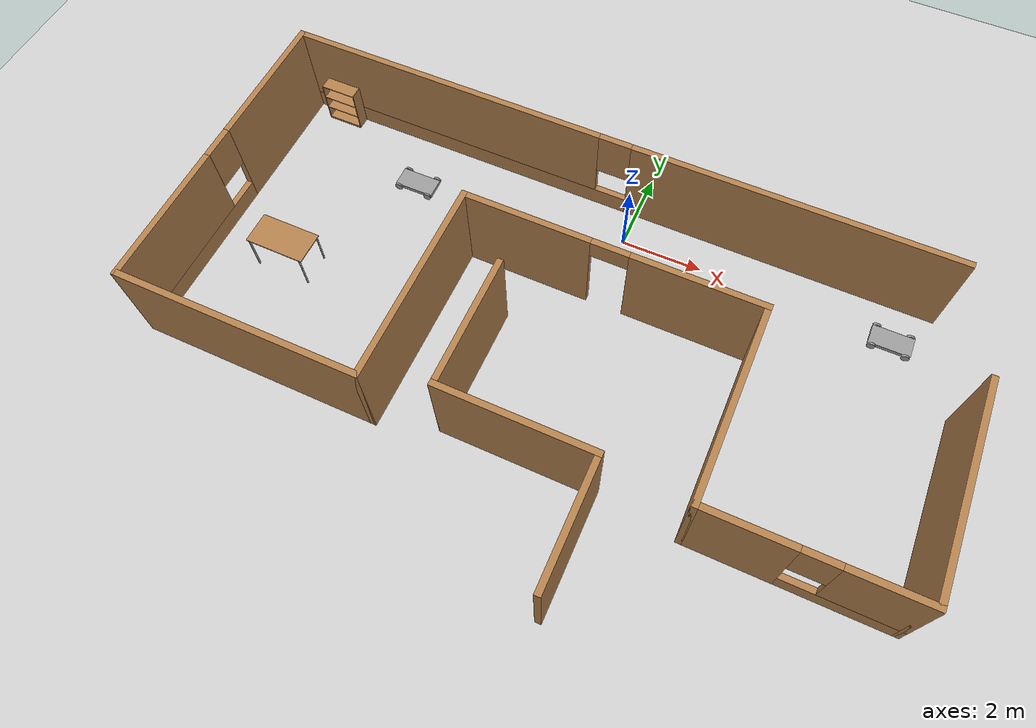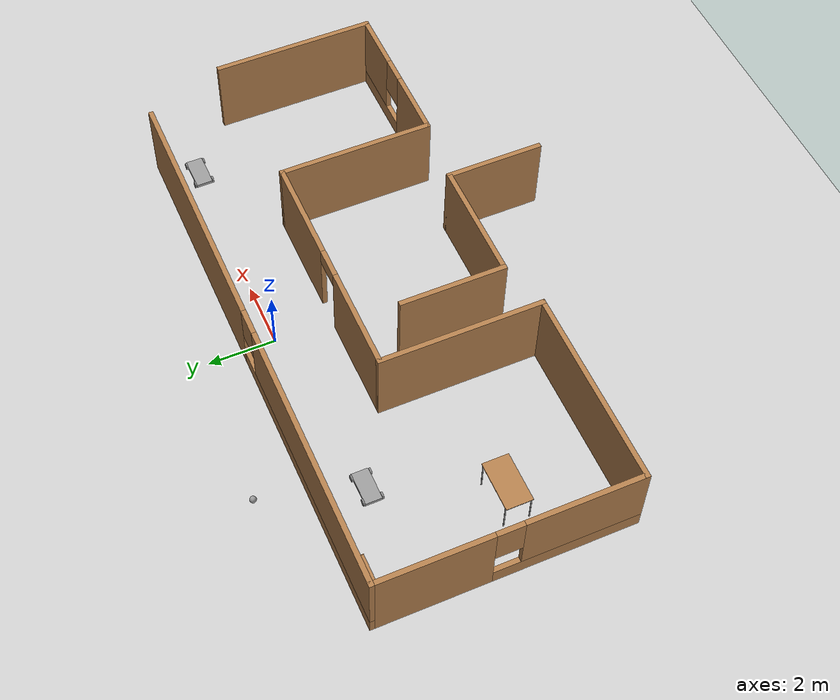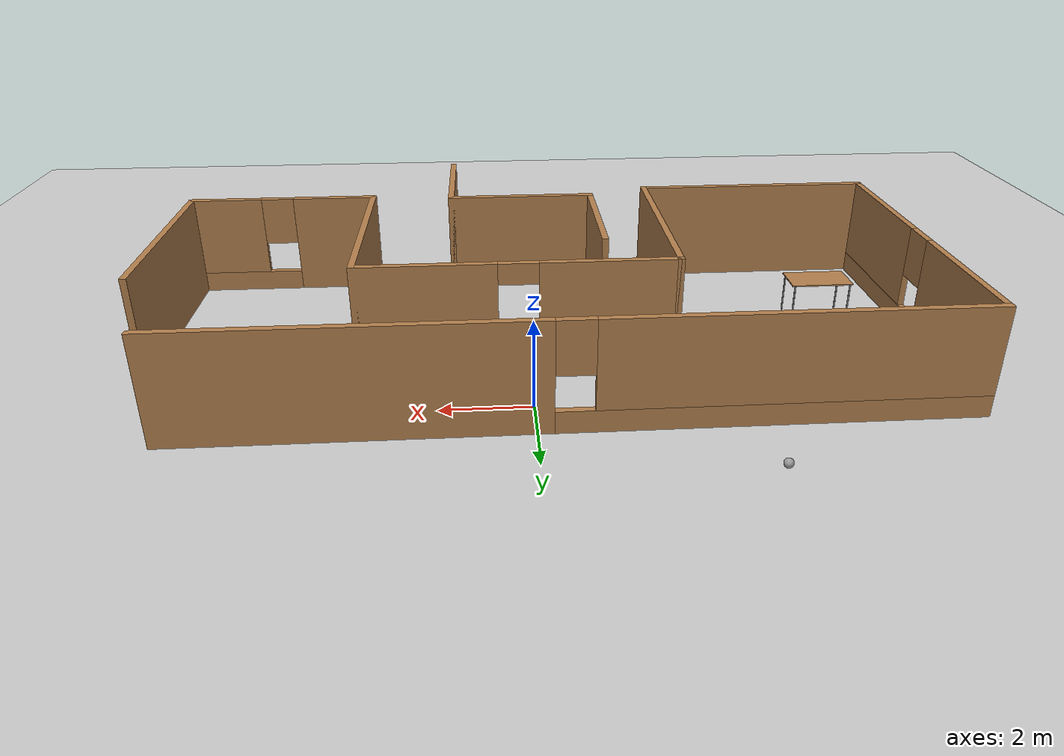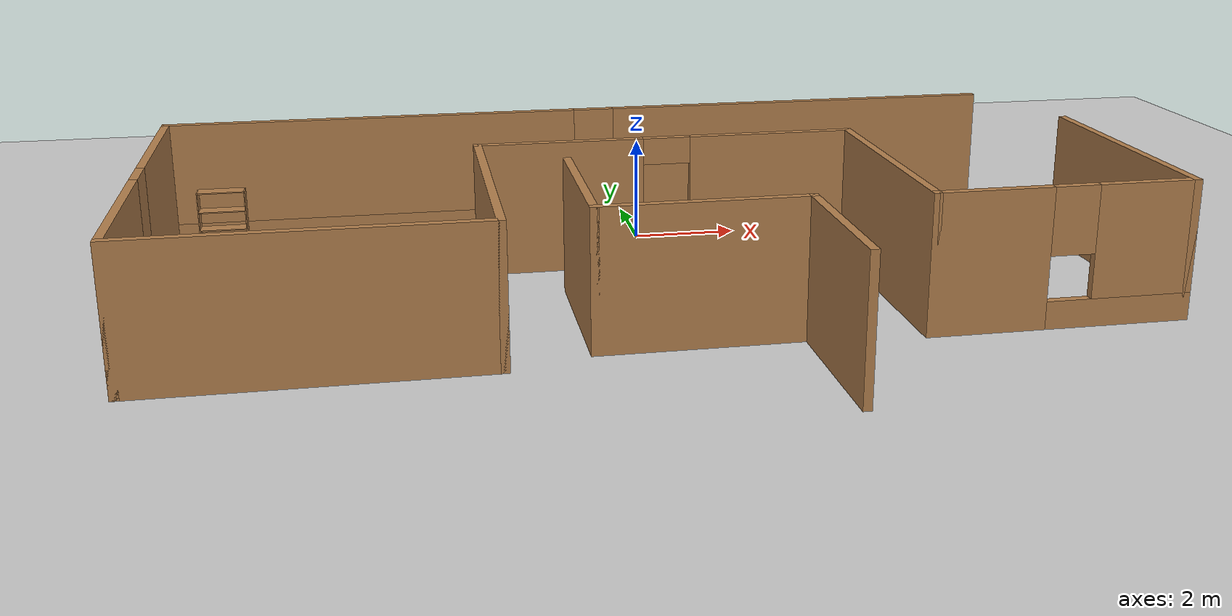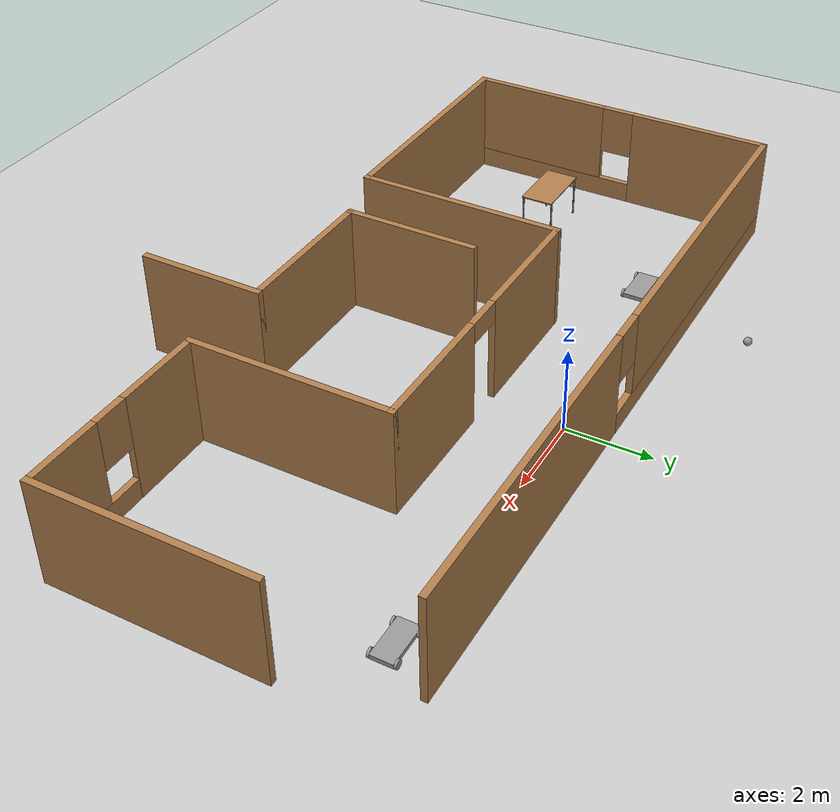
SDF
<sdf version="1.6">
 <world name="default">
  <plugin name="hello" filename="libhello.so"/>
  <light name="sun" type="directional">
   <pose>0 0 10 0 -0 0</pose>
   <diffuse>0.8 0.8 0.8 1</diffuse>
   <specular>0.2 0.2 0.2 1</specular>
   <attenuation>
    <range>1000</range>
    <constant>0.9</constant>
    <linear>0.01</linear>
    <quadratic>0.001</quadratic>
   </attenuation>
   <direction>-0.5 0.1 -0.9</direction>
  </light>
  <model name="ground_plane">
   <static>1</static>
   <link name="link">
    <collision name="collision">
     <geometry><plane><normal>0 0 1</normal><size>100 100</size></plane></geometry>
     <surface><friction><ode><mu>100</mu><mu2>50</mu2></ode></friction></surface>
    </collision>
    <visual name="visual">
     <cast_shadows>0</cast_shadows>
     <geometry><plane><normal>0 0 1</normal><size>100 100</size></plane></geometry>
     <material>
      <script><uri>file://media/materials/scripts/gazebo.material</uri><name>Gazebo/Grey</name></script>
     </material>
    </visual>
   </link>
  </model>
  <gravity>0 0 -9.8</gravity>
  <magnetic_field>6e-06 2.3e-05 -4.2e-05</magnetic_field>
  <atmosphere type="adiabatic"/>
  <physics name="default_physics" default="0" type="ode">
   <max_step_size>0.001</max_step_size>
   <real_time_factor>1</real_time_factor>
   <real_time_update_rate>1000</real_time_update_rate>
  </physics>
  <scene><ambient>0.4 0.4 0.4 1</ambient><background>0.7 0.7 0.7 1</background><shadows>1</shadows></scene>
  <spherical_coordinates>
   <surface_model>EARTH_WGS84</surface_model>
   <latitude_deg>0</latitude_deg>
   <longitude_deg>0</longitude_deg>
   <elevation>0</elevation>
   <heading_deg>0</heading_deg>
  </spherical_coordinates>
  <model name="carModel">
   <link name="link_0">
    <pose>0 0 0.00865 0 -0 0</pose>
    <inertial>
     <mass>1</mass>
     <inertia>
      <ixx>0.166667</ixx>
      <ixy>0</ixy>
      <ixz>0</ixz>
      <iyy>0.166667</iyy>
      <iyz>0</iyz>
      <izz>0.166667</izz>
     </inertia>
    </inertial>
    <visual name="visual">
     <geometry><box><size>1 0.5 0.1</size></box></geometry>
     <material>
      <lighting>1</lighting>
      <script><uri>file://media/materials/scripts/gazebo.material</uri><name>Gazebo/Grey</name></script>
      <shader type="pixel"><normal_map>__default__</normal_map></shader>
      <ambient>0.3 0.3 0.3 1</ambient>
      <diffuse>0.7 0.7 0.7 1</diffuse>
      <specular>0.01 0.01 0.01 1</specular>
      <emissive>0 0 0 1</emissive>
     </material>
    </visual>
    <collision name="collision">
     <geometry><box><size>1 0.5 0.1</size></box></geometry>
     <surface>
      <friction>
       <ode><mu>1</mu><mu2>1</mu2><fdir1>0 0 0</fdir1><slip1>0</slip1><slip2>0</slip2></ode>
       <torsional>
        <coefficient>1</coefficient>
        <patch_radius>0</patch_radius>
        <surface_radius>0</surface_radius>
        <use_patch_radius>1</use_patch_radius>
        <ode><slip>0</slip></ode>
       </torsional>
      </friction>
      <bounce><restitution_coefficient>0</restitution_coefficient><threshold>1e+06</threshold></bounce>
      <contact>
       <collide_without_contact>0</collide_without_contact>
       <collide_without_contact_bitmask>1</collide_without_contact_bitmask>
       <collide_bitmask>1</collide_bitmask>
       <ode>
        <soft_cfm>0</soft_cfm>
        <soft_erp>0.2</soft_erp>
        <kp>1e+13</kp>
        <kd>1</kd>
        <max_vel>0.01</max_vel>
        <min_depth>0</min_depth>
       </ode>
       <bullet>
        <split_impulse>1</split_impulse>
        <split_impulse_penetration_threshold>-0.01</split_impulse_penetration_threshold>
        <soft_cfm>0</soft_cfm>
        <soft_erp>0.2</soft_erp>
        <kp>1e+13</kp>
        <kd>1</kd>
       </bullet>
      </contact>
     </surface>
    </collision>
   </link>
   <link name="link_1_clone_0">
    <pose>-0.4 -0.27501 -0.002162 1.5707 -0 0</pose>
    <inertial>
     <mass>1</mass>
     <inertia><ixx>0.145833</ixx><ixy>0</ixy><ixz>0</ixz><iyy>0.145833</iyy><iyz>0</iyz><izz>0.125</izz></inertia>
    </inertial>
    <visual name="visual">
     <geometry><cylinder><radius>0.1</radius><length>0.05</length></cylinder></geometry>
     <material>
      <lighting>1</lighting>
      <script><uri>file://media/materials/scripts/gazebo.material</uri><name>Gazebo/Grey</name></script>
      <shader type="pixel"><normal_map>__default__</normal_map></shader>
      <ambient>0.3 0.3 0.3 1</ambient>
      <diffuse>0.7 0.7 0.7 1</diffuse>
      <specular>0.01 0.01 0.01 1</specular>
      <emissive>0 0 0 1</emissive>
     </material>
    </visual>
    <collision name="collision">
     <geometry><cylinder><radius>0.1</radius><length>0.05</length></cylinder></geometry>
     <surface>
      <friction>
       <ode><mu>1</mu><mu2>1</mu2><fdir1>0 0 0</fdir1><slip1>0</slip1><slip2>0</slip2></ode>
       <torsional>
        <coefficient>1</coefficient>
        <patch_radius>0</patch_radius>
        <surface_radius>0</surface_radius>
        <use_patch_radius>1</use_patch_radius>
        <ode><slip>0</slip></ode>
       </torsional>
      </friction>
      <bounce><restitution_coefficient>0</restitution_coefficient><threshold>1e+06</threshold></bounce>
      <contact>
       <collide_without_contact>0</collide_without_contact>
       <collide_without_contact_bitmask>1</collide_without_contact_bitmask>
       <collide_bitmask>1</collide_bitmask>
       <ode>
        <soft_cfm>0</soft_cfm>
        <soft_erp>0.2</soft_erp>
        <kp>1e+13</kp>
        <kd>1</kd>
        <max_vel>0.01</max_vel>
        <min_depth>0</min_depth>
       </ode>
       <bullet>
        <split_impulse>1</split_impulse>
        <split_impulse_penetration_threshold>-0.01</split_impulse_penetration_threshold>
        <soft_cfm>0</soft_cfm>
        <soft_erp>0.2</soft_erp>
        <kp>1e+13</kp>
        <kd>1</kd>
       </bullet>
      </contact>
     </surface>
    </collision>
   </link>
   <link name="link_1_clone_1">
    <pose>-0.4 0.27501 -0.002162 1.5707 -0 0</pose>
    <inertial>
     <mass>1</mass>
     <inertia><ixx>0.145833</ixx><ixy>0</ixy><ixz>0</ixz><iyy>0.145833</iyy><iyz>0</iyz><izz>0.125</izz></inertia>
    </inertial>
    <visual name="visual">
     <geometry><cylinder><radius>0.1</radius><length>0.05</length></cylinder></geometry>
     <material>
      <lighting>1</lighting>
      <script><uri>file://media/materials/scripts/gazebo.material</uri><name>Gazebo/Grey</name></script>
      <shader type="pixel"><normal_map>__default__</normal_map></shader>
      <ambient>0.3 0.3 0.3 1</ambient>
      <diffuse>0.7 0.7 0.7 1</diffuse>
      <specular>0.01 0.01 0.01 1</specular>
      <emissive>0 0 0 1</emissive>
     </material>
    </visual>
    <collision name="collision">
     <geometry><cylinder><radius>0.1</radius><length>0.05</length></cylinder></geometry>
     <surface>
      <friction>
       <ode><mu>1</mu><mu2>1</mu2><fdir1>0 0 0</fdir1><slip1>0</slip1><slip2>0</slip2></ode>
       <torsional>
        <coefficient>1</coefficient>
        <patch_radius>0</patch_radius>
        <surface_radius>0</surface_radius>
        <use_patch_radius>1</use_patch_radius>
        <ode><slip>0</slip></ode>
       </torsional>
      </friction>
      <bounce><restitution_coefficient>0</restitution_coefficient><threshold>1e+06</threshold></bounce>
      <contact>
       <collide_without_contact>0</collide_without_contact>
       <collide_without_contact_bitmask>1</collide_without_contact_bitmask>
       <collide_bitmask>1</collide_bitmask>
       <ode>
        <soft_cfm>0</soft_cfm>
        <soft_erp>0.2</soft_erp>
        <kp>1e+13</kp>
        <kd>1</kd>
        <max_vel>0.01</max_vel>
        <min_depth>0</min_depth>
       </ode>
       <bullet>
        <split_impulse>1</split_impulse>
        <split_impulse_penetration_threshold>-0.01</split_impulse_penetration_threshold>
        <soft_cfm>0</soft_cfm>
        <soft_erp>0.2</soft_erp>
        <kp>1e+13</kp>
        <kd>1</kd>
       </bullet>
      </contact>
     </surface>
    </collision>
   </link>
   <link name="link_1_clone_1_clone">
    <pose>0.4 0.27501 -0.002162 1.5707 -0 0</pose>
    <inertial>
     <mass>1</mass>
     <inertia><ixx>0.145833</ixx><ixy>0</ixy><ixz>0</ixz><iyy>0.145833</iyy><iyz>0</iyz><izz>0.125</izz></inertia>
    </inertial>
    <visual name="visual">
     <geometry><cylinder><radius>0.1</radius><length>0.05</length></cylinder></geometry>
     <material>
      <lighting>1</lighting>
      <script><uri>file://media/materials/scripts/gazebo.material</uri><name>Gazebo/Grey</name></script>
      <shader type="pixel"><normal_map>__default__</normal_map></shader>
      <ambient>0.3 0.3 0.3 1</ambient>
      <diffuse>0.7 0.7 0.7 1</diffuse>
      <specular>0.01 0.01 0.01 1</specular>
      <emissive>0 0 0 1</emissive>
     </material>
    </visual>
    <collision name="collision">
     <geometry><cylinder><radius>0.1</radius><length>0.05</length></cylinder></geometry>
     <surface>
      <friction>
       <ode><mu>1</mu><mu2>1</mu2><fdir1>0 0 0</fdir1><slip1>0</slip1><slip2>0</slip2></ode>
       <torsional>
        <coefficient>1</coefficient>
        <patch_radius>0</patch_radius>
        <surface_radius>0</surface_radius>
        <use_patch_radius>1</use_patch_radius>
        <ode><slip>0</slip></ode>
       </torsional>
      </friction>
      <bounce><restitution_coefficient>0</restitution_coefficient><threshold>1e+06</threshold></bounce>
      <contact>
       <collide_without_contact>0</collide_without_contact>
       <collide_without_contact_bitmask>1</collide_without_contact_bitmask>
       <collide_bitmask>1</collide_bitmask>
       <ode>
        <soft_cfm>0</soft_cfm>
        <soft_erp>0.2</soft_erp>
        <kp>1e+13</kp>
        <kd>1</kd>
        <max_vel>0.01</max_vel>
        <min_depth>0</min_depth>
       </ode>
       <bullet>
        <split_impulse>1</split_impulse>
        <split_impulse_penetration_threshold>-0.01</split_impulse_penetration_threshold>
        <soft_cfm>0</soft_cfm>
        <soft_erp>0.2</soft_erp>
        <kp>1e+13</kp>
        <kd>1</kd>
       </bullet>
      </contact>
     </surface>
    </collision>
   </link>
   <link name="link_1_clone_1_clone_clone">
    <pose>0.4 -0.27501 -0.002162 1.5707 -0 0</pose>
    <inertial>
     <mass>1</mass>
     <inertia><ixx>0.145833</ixx><ixy>0</ixy><ixz>0</ixz><iyy>0.145833</iyy><iyz>0</iyz><izz>0.125</izz></inertia>
    </inertial>
    <visual name="visual">
     <geometry><cylinder><radius>0.1</radius><length>0.05</length></cylinder></geometry>
     <material>
      <lighting>1</lighting>
      <script><uri>file://media/materials/scripts/gazebo.material</uri><name>Gazebo/Grey</name></script>
      <shader type="pixel"><normal_map>__default__</normal_map></shader>
      <ambient>0.3 0.3 0.3 1</ambient>
      <diffuse>0.7 0.7 0.7 1</diffuse>
      <specular>0.01 0.01 0.01 1</specular>
      <emissive>0 0 0 1</emissive>
     </material>
    </visual>
    <collision name="collision">
     <geometry><cylinder><radius>0.1</radius><length>0.05</length></cylinder></geometry>
     <surface>
      <friction>
       <ode><mu>1</mu><mu2>1</mu2><fdir1>0 0 0</fdir1><slip1>0</slip1><slip2>0</slip2></ode>
       <torsional>
        <coefficient>1</coefficient>
        <patch_radius>0</patch_radius>
        <surface_radius>0</surface_radius>
        <use_patch_radius>1</use_patch_radius>
        <ode><slip>0</slip></ode>
       </torsional>
      </friction>
      <bounce><restitution_coefficient>0</restitution_coefficient><threshold>1e+06</threshold></bounce>
      <contact>
       <collide_without_contact>0</collide_without_contact>
       <collide_without_contact_bitmask>1</collide_without_contact_bitmask>
       <collide_bitmask>1</collide_bitmask>
       <ode>
        <soft_cfm>0</soft_cfm>
        <soft_erp>0.2</soft_erp>
        <kp>1e+13</kp>
        <kd>1</kd>
        <max_vel>0.01</max_vel>
        <min_depth>0</min_depth>
       </ode>
       <bullet>
        <split_impulse>1</split_impulse>
        <split_impulse_penetration_threshold>-0.01</split_impulse_penetration_threshold>
        <soft_cfm>0</soft_cfm>
        <soft_erp>0.2</soft_erp>
        <kp>1e+13</kp>
        <kd>1</kd>
       </bullet>
      </contact>
     </surface>
    </collision>
   </link>
   <joint name="link_0_JOINT_2" type="revolute">
    <parent>link_0</parent>
    <child>link_1_clone_0</child>
    <axis>
     <xyz>0 0 1</xyz>
     <use_parent_model_frame>0</use_parent_model_frame>
     <limit>
      <lower>-1.79769e+308</lower>
      <upper>1.79769e+308</upper>
      <effort>-1</effort>
      <velocity>-1</velocity>
     </limit>
     <dynamics>
      <spring_reference>0</spring_reference>
      <spring_stiffness>0</spring_stiffness>
      <damping>0</damping>
     </dynamics>
    </axis>
    <physics>
     <ode><limit><cfm>0</cfm><erp>0.2</erp></limit><suspension><cfm>0</cfm><erp>0.2</erp></suspension></ode>
    </physics>
   </joint>
   <joint name="link_0_JOINT_5" type="revolute">
    <parent>link_0</parent>
    <child>link_1_clone_1_clone_clone</child>
    <axis>
     <xyz>0 0 1</xyz>
     <use_parent_model_frame>0</use_parent_model_frame>
     <limit>
      <lower>-1.79769e+308</lower>
      <upper>1.79769e+308</upper>
      <effort>-1</effort>
      <velocity>-1</velocity>
     </limit>
     <dynamics>
      <spring_reference>0</spring_reference>
      <spring_stiffness>0</spring_stiffness>
      <damping>0</damping>
     </dynamics>
    </axis>
    <physics>
     <ode><limit><cfm>0</cfm><erp>0.2</erp></limit><suspension><cfm>0</cfm><erp>0.2</erp></suspension></ode>
    </physics>
   </joint>
   <joint name="link_0_JOINT_6" type="revolute">
    <parent>link_0</parent>
    <child>link_1_clone_1_clone</child>
    <axis>
     <xyz>0 0 1</xyz>
     <use_parent_model_frame>0</use_parent_model_frame>
     <limit>
      <lower>-1.79769e+308</lower>
      <upper>1.79769e+308</upper>
      <effort>-1</effort>
      <velocity>-1</velocity>
     </limit>
     <dynamics>
      <spring_reference>0</spring_reference>
      <spring_stiffness>0</spring_stiffness>
      <damping>0</damping>
     </dynamics>
    </axis>
    <physics>
     <ode><limit><cfm>0</cfm><erp>0.2</erp></limit><suspension><cfm>0</cfm><erp>0.2</erp></suspension></ode>
    </physics>
   </joint>
   <joint name="link_0_JOINT_7" type="revolute">
    <parent>link_0</parent>
    <child>link_1_clone_1</child>
    <axis>
     <xyz>0 0 1</xyz>
     <use_parent_model_frame>0</use_parent_model_frame>
     <limit>
      <lower>-1.79769e+308</lower>
      <upper>1.79769e+308</upper>
      <effort>-1</effort>
      <velocity>-1</velocity>
     </limit>
     <dynamics>
      <spring_reference>0</spring_reference>
      <spring_stiffness>0</spring_stiffness>
      <damping>0</damping>
     </dynamics>
    </axis>
    <physics>
     <ode><limit><cfm>0</cfm><erp>0.2</erp></limit><suspension><cfm>0</cfm><erp>0.2</erp></suspension></ode>
    </physics>
   </joint>
   <static>0</static>
   <pose>6.70606 -0.099601 0.102161 -0 -9e-06 0.00482</pose>
  </model>
  <model name="homeModel">
   <pose>-0.385633 -4.07565 0 0 -0 0</pose>
   <link name="Wall_0">
    <pose>-0.475 4.99879 0 0 -0 3.14159</pose>
    <visual name="Wall_0_Visual_0">
     <pose>-4.44339 0 1.25 0 -0 0</pose>
     <geometry><box><size>7.86321 0.15 2.5</size></box></geometry>
     <material>
      <script><uri>file://media/materials/scripts/gazebo.material</uri><name>Gazebo/Wood</name></script>
      <ambient>1 1 1 1</ambient>
     </material>
     <meta><layer>0</layer></meta>
    </visual>
    <collision name="Wall_0_Collision_0">
     <geometry><box><size>7.86321 0.15 2.5</size></box></geometry>
     <pose>-4.44339 0 1.25 0 -0 0</pose>
    </collision>
    <visual name="Wall_0_Visual_1">
     <pose>3.9316 0 0.25 0 -0 0</pose>
     <geometry><box><size>8.88679 0.15 0.5</size></box></geometry>
     <material>
      <script><uri>file://media/materials/scripts/gazebo.material</uri><name>Gazebo/Wood</name></script>
      <ambient>1 1 1 1</ambient>
     </material>
     <meta><layer>0</layer></meta>
    </visual>
    <collision name="Wall_0_Collision_1">
     <geometry><box><size>8.88679 0.15 0.5</size></box></geometry>
     <pose>3.9316 0 0.25 0 -0 0</pose>
    </collision>
    <visual name="Wall_0_Visual_2">
     <pose>4.3316 0 1.5 0 -0 0</pose>
     <geometry><box><size>8.08679 0.15 2</size></box></geometry>
     <material>
      <script><uri>file://media/materials/scripts/gazebo.material</uri><name>Gazebo/Wood</name></script>
      <ambient>1 1 1 1</ambient>
     </material>
     <meta><layer>0</layer></meta>
    </visual>
    <collision name="Wall_0_Collision_2">
     <geometry><box><size>8.08679 0.15 2</size></box></geometry>
     <pose>4.3316 0 1.5 0 -0 0</pose>
    </collision>
    <visual name="Wall_0_Visual_3">
     <pose>-0.111791 0 1.9 0 -0 0</pose>
     <geometry><box><size>0.8 0.15 1.2</size></box></geometry>
     <material>
      <script><uri>file://media/materials/scripts/gazebo.material</uri><name>Gazebo/Wood</name></script>
      <ambient>1 1 1 1</ambient>
     </material>
     <meta><layer>0</layer></meta>
    </visual>
    <collision name="Wall_0_Collision_3">
     <geometry><box><size>0.8 0.15 1.2</size></box></geometry>
     <pose>-0.111791 0 1.9 0 -0 0</pose>
    </collision>
   </link>
   <link name="Wall_1">
    <pose>-8.775 1.19879 0 0 0 -1.5708</pose>
    <visual name="Wall_1_Visual_0">
     <pose>-2.15328 0 1.25 0 -0 0</pose>
     <geometry><box><size>3.44344 0.15 2.5</size></box></geometry>
     <material>
      <script><uri>file://media/materials/scripts/gazebo.material</uri><name>Gazebo/Wood</name></script>
      <ambient>1 1 1 1</ambient>
     </material>
     <meta><layer>0</layer></meta>
    </visual>
    <collision name="Wall_1_Collision_0">
     <geometry><box><size>3.44344 0.15 2.5</size></box></geometry>
     <pose>-2.15328 0 1.25 0 -0 0</pose>
    </collision>
    <visual name="Wall_1_Visual_1">
     <pose>1.72172 0 0.25 0 -0 0</pose>
     <geometry><box><size>4.30656 0.15 0.5</size></box></geometry>
     <material>
      <script><uri>file://media/materials/scripts/gazebo.material</uri><name>Gazebo/Wood</name></script>
      <ambient>1 1 1 1</ambient>
     </material>
     <meta><layer>0</layer></meta>
    </visual>
    <collision name="Wall_1_Collision_1">
     <geometry><box><size>4.30656 0.15 0.5</size></box></geometry>
     <pose>1.72172 0 0.25 0 -0 0</pose>
    </collision>
    <visual name="Wall_1_Visual_2">
     <pose>2.12172 0 1.5 0 -0 0</pose>
     <geometry><box><size>3.50656 0.15 2</size></box></geometry>
     <material>
      <script><uri>file://media/materials/scripts/gazebo.material</uri><name>Gazebo/Wood</name></script>
      <ambient>1 1 1 1</ambient>
     </material>
     <meta><layer>0</layer></meta>
    </visual>
    <collision name="Wall_1_Collision_2">
     <geometry><box><size>3.50656 0.15 2</size></box></geometry>
     <pose>2.12172 0 1.5 0 -0 0</pose>
    </collision>
    <visual name="Wall_1_Visual_3">
     <pose>-0.031563 0 1.9 0 -0 0</pose>
     <geometry><box><size>0.8 0.15 1.2</size></box></geometry>
     <material>
      <script><uri>file://media/materials/scripts/gazebo.material</uri><name>Gazebo/Wood</name></script>
      <ambient>1 1 1 1</ambient>
     </material>
     <meta><layer>0</layer></meta>
    </visual>
    <collision name="Wall_1_Collision_3">
     <geometry><box><size>0.8 0.15 1.2</size></box></geometry>
     <pose>-0.031563 0 1.9 0 -0 0</pose>
    </collision>
   </link>
   <link name="Wall_10">
    <collision name="Wall_10_Collision">
     <geometry><box><size>3.75 0.15 2.5</size></box></geometry>
     <pose>0 0 1.25 0 -0 0</pose>
    </collision>
    <visual name="Wall_10_Visual">
     <pose>0 0 1.25 0 -0 0</pose>
     <geometry><box><size>3.75 0.15 2.5</size></box></geometry>
     <material>
      <script><uri>file://media/materials/scripts/gazebo.material</uri><name>Gazebo/Wood</name></script>
      <ambient>1 1 1 1</ambient>
     </material>
     <meta><layer>0</layer></meta>
    </visual>
    <pose>0.366741 -2.14879 0 0 -0 0</pose>
   </link>
   <link name="Wall_11">
    <collision name="Wall_11_Collision">
     <geometry><box><size>3 0.15 2.5</size></box></geometry>
     <pose>0 0 1.25 0 -0 0</pose>
    </collision>
    <visual name="Wall_11_Visual">
     <pose>0 0 1.25 0 -0 0</pose>
     <geometry><box><size>3 0.15 2.5</size></box></geometry>
     <material>
      <script><uri>file://media/materials/scripts/gazebo.material</uri><name>Gazebo/Wood</name></script>
      <ambient>1 1 1 1</ambient>
     </material>
     <meta><layer>0</layer></meta>
    </visual>
    <pose>2.16674 -3.57379 0 0 0 -1.5708</pose>
   </link>
   <link name="Wall_2">
    <collision name="Wall_2_Collision">
     <geometry><box><size>6 0.15 2.5</size></box></geometry>
     <pose>0 0 1.25 0 -0 0</pose>
    </collision>
    <visual name="Wall_2_Visual">
     <pose>0 0 1.25 0 -0 0</pose>
     <geometry><box><size>6 0.15 2.5</size></box></geometry>
     <material>
      <script><uri>file://media/materials/scripts/gazebo.material</uri><name>Gazebo/Wood</name></script>
      <ambient>1 1 1 1</ambient>
     </material>
     <meta><layer>0</layer></meta>
    </visual>
    <pose>-5.85 -2.60121 0 0 -0 0</pose>
   </link>
   <link name="Wall_3">
    <collision name="Wall_3_Collision">
     <geometry><box><size>5 0.15 2.5</size></box></geometry>
     <pose>0 0 1.25 0 -0 0</pose>
    </collision>
    <visual name="Wall_3_Visual">
     <pose>0 0 1.25 0 -0 0</pose>
     <geometry><box><size>5 0.15 2.5</size></box></geometry>
     <material>
      <script><uri>file://media/materials/scripts/gazebo.material</uri><name>Gazebo/Wood</name></script>
      <ambient>1 1 1 1</ambient>
     </material>
     <meta><layer>0</layer></meta>
    </visual>
    <pose>-2.925 -0.17621 0 0 -0 1.5708</pose>
   </link>
   <link name="Wall_4">
    <pose>0.624999 2.24879 0 0 -0 0</pose>
    <visual name="Wall_4_Visual_0">
     <pose>-2.0431 0 1.25 0 -0 0</pose>
     <geometry><box><size>3.16379 0.15 2.5</size></box></geometry>
     <material>
      <script><uri>file://media/materials/scripts/gazebo.material</uri><name>Gazebo/Wood</name></script>
      <ambient>1 1 1 1</ambient>
     </material>
     <meta><layer>0</layer></meta>
    </visual>
    <collision name="Wall_4_Collision_0">
     <geometry><box><size>3.16379 0.15 2.5</size></box></geometry>
     <pose>-2.0431 0 1.25 0 -0 0</pose>
    </collision>
    <visual name="Wall_4_Visual_1">
     <pose>2.0319 0 1.25 0 -0 0</pose>
     <geometry><box><size>3.18621 0.15 2.5</size></box></geometry>
     <material>
      <script><uri>file://media/materials/scripts/gazebo.material</uri><name>Gazebo/Wood</name></script>
      <ambient>1 1 1 1</ambient>
     </material>
     <meta><layer>0</layer></meta>
    </visual>
    <collision name="Wall_4_Collision_1">
     <geometry><box><size>3.18621 0.15 2.5</size></box></geometry>
     <pose>2.0319 0 1.25 0 -0 0</pose>
    </collision>
    <visual name="Wall_4_Visual_2">
     <pose>-0.011207 0 2.25 0 -0 0</pose>
     <geometry><box><size>0.9 0.15 0.5</size></box></geometry>
     <material>
      <script><uri>file://media/materials/scripts/gazebo.material</uri><name>Gazebo/Wood</name></script>
      <ambient>1 1 1 1</ambient>
     </material>
     <meta><layer>0</layer></meta>
    </visual>
    <collision name="Wall_4_Collision_2">
     <geometry><box><size>0.9 0.15 0.5</size></box></geometry>
     <pose>-0.011207 0 2.25 0 -0 0</pose>
    </collision>
   </link>
   <link name="Wall_5">
    <collision name="Wall_5_Collision">
     <geometry><box><size>4.75 0.15 2.5</size></box></geometry>
     <pose>0 0 1.25 0 -0 0</pose>
    </collision>
    <visual name="Wall_5_Visual">
     <pose>0 0 1.25 0 -0 0</pose>
     <geometry><box><size>4.75 0.15 2.5</size></box></geometry>
     <material>
      <script><uri>file://media/materials/scripts/gazebo.material</uri><name>Gazebo/Wood</name></script>
      <ambient>1 1 1 1</ambient>
     </material>
     <meta><layer>0</layer></meta>
    </visual>
    <pose>4.175 -0.05121 0 0 0 -1.5708</pose>
   </link>
   <link name="Wall_6">
    <pose>6.475 -2.35121 0 0 -0 0</pose>
    <visual name="Wall_6_Visual_0">
     <pose>-1.31731 0 1.25 0 -0 0</pose>
     <geometry><box><size>2.11538 0.15 2.5</size></box></geometry>
     <material>
      <script><uri>file://media/materials/scripts/gazebo.material</uri><name>Gazebo/Wood</name></script>
      <ambient>1 1 1 1</ambient>
     </material>
     <meta><layer>0</layer></meta>
    </visual>
    <collision name="Wall_6_Collision_0">
     <geometry><box><size>2.11538 0.15 2.5</size></box></geometry>
     <pose>-1.31731 0 1.25 0 -0 0</pose>
    </collision>
    <visual name="Wall_6_Visual_1">
     <pose>1.05769 0 0.25 0 -0 0</pose>
     <geometry><box><size>2.63462 0.15 0.5</size></box></geometry>
     <material>
      <script><uri>file://media/materials/scripts/gazebo.material</uri><name>Gazebo/Wood</name></script>
      <ambient>1 1 1 1</ambient>
     </material>
     <meta><layer>0</layer></meta>
    </visual>
    <collision name="Wall_6_Collision_1">
     <geometry><box><size>2.63462 0.15 0.5</size></box></geometry>
     <pose>1.05769 0 0.25 0 -0 0</pose>
    </collision>
    <visual name="Wall_6_Visual_2">
     <pose>1.45769 0 1.5 0 -0 0</pose>
     <geometry><box><size>1.83462 0.15 2</size></box></geometry>
     <material>
      <script><uri>file://media/materials/scripts/gazebo.material</uri><name>Gazebo/Wood</name></script>
      <ambient>1 1 1 1</ambient>
     </material>
     <meta><layer>0</layer></meta>
    </visual>
    <collision name="Wall_6_Collision_2">
     <geometry><box><size>1.83462 0.15 2</size></box></geometry>
     <pose>1.45769 0 1.5 0 -0 0</pose>
    </collision>
    <visual name="Wall_6_Visual_3">
     <pose>0.140378 0 1.9 0 -0 0</pose>
     <geometry><box><size>0.8 0.15 1.2</size></box></geometry>
     <material>
      <script><uri>file://media/materials/scripts/gazebo.material</uri><name>Gazebo/Wood</name></script>
      <ambient>1 1 1 1</ambient>
     </material>
     <meta><layer>0</layer></meta>
    </visual>
    <collision name="Wall_6_Collision_3">
     <geometry><box><size>0.8 0.15 1.2</size></box></geometry>
     <pose>0.140378 0 1.9 0 -0 0</pose>
    </collision>
   </link>
   <link name="Wall_7">
    <collision name="Wall_7_Collision">
     <geometry><box><size>5 0.15 2.5</size></box></geometry>
     <pose>0 0 1.25 0 -0 0</pose>
    </collision>
    <visual name="Wall_7_Visual">
     <pose>0 0 1.25 0 -0 0</pose>
     <geometry><box><size>5 0.15 2.5</size></box></geometry>
     <material>
      <script><uri>file://media/materials/scripts/gazebo.material</uri><name>Gazebo/Wood</name></script>
      <ambient>1 1 1 1</ambient>
     </material>
     <meta><layer>0</layer></meta>
    </visual>
    <pose>8.775 0.07379 0 0 -0 1.5708</pose>
   </link>
   <link name="Wall_9">
    <collision name="Wall_9_Collision">
     <geometry><box><size>3.25 0.15 2.5</size></box></geometry>
     <pose>0 0 1.25 0 -0 0</pose>
    </collision>
    <visual name="Wall_9_Visual">
     <pose>0 0 1.25 0 -0 0</pose>
     <geometry><box><size>3.25 0.15 2.5</size></box></geometry>
     <material>
      <script><uri>file://media/materials/scripts/gazebo.material</uri><name>Gazebo/Wood</name></script>
      <ambient>1 1 1 1</ambient>
     </material>
     <meta><layer>0</layer></meta>
    </visual>
    <pose>-1.43326 -0.59879 0 0 0 -1.5708</pose>
   </link>
   <static>1</static>
  </model>
  <model name="carModel_clone">
   <link name="link_0">
    <pose>0 0 0.00865 0 -0 0</pose>
    <inertial>
     <mass>1</mass>
     <inertia>
      <ixx>0.166667</ixx>
      <ixy>0</ixy>
      <ixz>0</ixz>
      <iyy>0.166667</iyy>
      <iyz>0</iyz>
      <izz>0.166667</izz>
     </inertia>
    </inertial>
    <visual name="visual">
     <geometry><box><size>1 0.5 0.1</size></box></geometry>
     <material>
      <lighting>1</lighting>
      <script><uri>file://media/materials/scripts/gazebo.material</uri><name>Gazebo/Grey</name></script>
      <shader type="pixel"><normal_map>__default__</normal_map></shader>
      <ambient>0.3 0.3 0.3 1</ambient>
      <diffuse>0.7 0.7 0.7 1</diffuse>
      <specular>0.01 0.01 0.01 1</specular>
      <emissive>0 0 0 1</emissive>
     </material>
    </visual>
    <collision name="collision">
     <geometry><box><size>1 0.5 0.1</size></box></geometry>
     <surface>
      <friction>
       <ode><mu>1</mu><mu2>1</mu2><fdir1>0 0 0</fdir1><slip1>0</slip1><slip2>0</slip2></ode>
       <torsional>
        <coefficient>1</coefficient>
        <patch_radius>0</patch_radius>
        <surface_radius>0</surface_radius>
        <use_patch_radius>1</use_patch_radius>
        <ode><slip>0</slip></ode>
       </torsional>
      </friction>
      <bounce><restitution_coefficient>0</restitution_coefficient><threshold>1e+06</threshold></bounce>
      <contact>
       <collide_without_contact>0</collide_without_contact>
       <collide_without_contact_bitmask>1</collide_without_contact_bitmask>
       <collide_bitmask>1</collide_bitmask>
       <ode>
        <soft_cfm>0</soft_cfm>
        <soft_erp>0.2</soft_erp>
        <kp>1e+13</kp>
        <kd>1</kd>
        <max_vel>0.01</max_vel>
        <min_depth>0</min_depth>
       </ode>
       <bullet>
        <split_impulse>1</split_impulse>
        <split_impulse_penetration_threshold>-0.01</split_impulse_penetration_threshold>
        <soft_cfm>0</soft_cfm>
        <soft_erp>0.2</soft_erp>
        <kp>1e+13</kp>
        <kd>1</kd>
       </bullet>
      </contact>
     </surface>
    </collision>
   </link>
   <link name="link_1_clone_0">
    <pose>-0.4 -0.27501 -0.002162 1.5707 -0 0</pose>
    <inertial>
     <mass>1</mass>
     <inertia><ixx>0.145833</ixx><ixy>0</ixy><ixz>0</ixz><iyy>0.145833</iyy><iyz>0</iyz><izz>0.125</izz></inertia>
    </inertial>
    <visual name="visual">
     <geometry><cylinder><radius>0.1</radius><length>0.05</length></cylinder></geometry>
     <material>
      <lighting>1</lighting>
      <script><uri>file://media/materials/scripts/gazebo.material</uri><name>Gazebo/Grey</name></script>
      <shader type="pixel"><normal_map>__default__</normal_map></shader>
      <ambient>0.3 0.3 0.3 1</ambient>
      <diffuse>0.7 0.7 0.7 1</diffuse>
      <specular>0.01 0.01 0.01 1</specular>
      <emissive>0 0 0 1</emissive>
     </material>
    </visual>
    <collision name="collision">
     <geometry><cylinder><radius>0.1</radius><length>0.05</length></cylinder></geometry>
     <surface>
      <friction>
       <ode><mu>1</mu><mu2>1</mu2><fdir1>0 0 0</fdir1><slip1>0</slip1><slip2>0</slip2></ode>
       <torsional>
        <coefficient>1</coefficient>
        <patch_radius>0</patch_radius>
        <surface_radius>0</surface_radius>
        <use_patch_radius>1</use_patch_radius>
        <ode><slip>0</slip></ode>
       </torsional>
      </friction>
      <bounce><restitution_coefficient>0</restitution_coefficient><threshold>1e+06</threshold></bounce>
      <contact>
       <collide_without_contact>0</collide_without_contact>
       <collide_without_contact_bitmask>1</collide_without_contact_bitmask>
       <collide_bitmask>1</collide_bitmask>
       <ode>
        <soft_cfm>0</soft_cfm>
        <soft_erp>0.2</soft_erp>
        <kp>1e+13</kp>
        <kd>1</kd>
        <max_vel>0.01</max_vel>
        <min_depth>0</min_depth>
       </ode>
       <bullet>
        <split_impulse>1</split_impulse>
        <split_impulse_penetration_threshold>-0.01</split_impulse_penetration_threshold>
        <soft_cfm>0</soft_cfm>
        <soft_erp>0.2</soft_erp>
        <kp>1e+13</kp>
        <kd>1</kd>
       </bullet>
      </contact>
     </surface>
    </collision>
   </link>
   <link name="link_1_clone_1">
    <pose>-0.4 0.27501 -0.002162 1.5707 -0 0</pose>
    <inertial>
     <mass>1</mass>
     <inertia><ixx>0.145833</ixx><ixy>0</ixy><ixz>0</ixz><iyy>0.145833</iyy><iyz>0</iyz><izz>0.125</izz></inertia>
    </inertial>
    <visual name="visual">
     <geometry><cylinder><radius>0.1</radius><length>0.05</length></cylinder></geometry>
     <material>
      <lighting>1</lighting>
      <script><uri>file://media/materials/scripts/gazebo.material</uri><name>Gazebo/Grey</name></script>
      <shader type="pixel"><normal_map>__default__</normal_map></shader>
      <ambient>0.3 0.3 0.3 1</ambient>
      <diffuse>0.7 0.7 0.7 1</diffuse>
      <specular>0.01 0.01 0.01 1</specular>
      <emissive>0 0 0 1</emissive>
     </material>
    </visual>
    <collision name="collision">
     <geometry><cylinder><radius>0.1</radius><length>0.05</length></cylinder></geometry>
     <surface>
      <friction>
       <ode><mu>1</mu><mu2>1</mu2><fdir1>0 0 0</fdir1><slip1>0</slip1><slip2>0</slip2></ode>
       <torsional>
        <coefficient>1</coefficient>
        <patch_radius>0</patch_radius>
        <surface_radius>0</surface_radius>
        <use_patch_radius>1</use_patch_radius>
        <ode><slip>0</slip></ode>
       </torsional>
      </friction>
      <bounce><restitution_coefficient>0</restitution_coefficient><threshold>1e+06</threshold></bounce>
      <contact>
       <collide_without_contact>0</collide_without_contact>
       <collide_without_contact_bitmask>1</collide_without_contact_bitmask>
       <collide_bitmask>1</collide_bitmask>
       <ode>
        <soft_cfm>0</soft_cfm>
        <soft_erp>0.2</soft_erp>
        <kp>1e+13</kp>
        <kd>1</kd>
        <max_vel>0.01</max_vel>
        <min_depth>0</min_depth>
       </ode>
       <bullet>
        <split_impulse>1</split_impulse>
        <split_impulse_penetration_threshold>-0.01</split_impulse_penetration_threshold>
        <soft_cfm>0</soft_cfm>
        <soft_erp>0.2</soft_erp>
        <kp>1e+13</kp>
        <kd>1</kd>
       </bullet>
      </contact>
     </surface>
    </collision>
   </link>
   <link name="link_1_clone_1_clone">
    <pose>0.4 0.27501 -0.002162 1.5707 -0 0</pose>
    <inertial>
     <mass>1</mass>
     <inertia><ixx>0.145833</ixx><ixy>0</ixy><ixz>0</ixz><iyy>0.145833</iyy><iyz>0</iyz><izz>0.125</izz></inertia>
    </inertial>
    <visual name="visual">
     <geometry><cylinder><radius>0.1</radius><length>0.05</length></cylinder></geometry>
     <material>
      <lighting>1</lighting>
      <script><uri>file://media/materials/scripts/gazebo.material</uri><name>Gazebo/Grey</name></script>
      <shader type="pixel"><normal_map>__default__</normal_map></shader>
      <ambient>0.3 0.3 0.3 1</ambient>
      <diffuse>0.7 0.7 0.7 1</diffuse>
      <specular>0.01 0.01 0.01 1</specular>
      <emissive>0 0 0 1</emissive>
     </material>
    </visual>
    <collision name="collision">
     <geometry><cylinder><radius>0.1</radius><length>0.05</length></cylinder></geometry>
     <surface>
      <friction>
       <ode><mu>1</mu><mu2>1</mu2><fdir1>0 0 0</fdir1><slip1>0</slip1><slip2>0</slip2></ode>
       <torsional>
        <coefficient>1</coefficient>
        <patch_radius>0</patch_radius>
        <surface_radius>0</surface_radius>
        <use_patch_radius>1</use_patch_radius>
        <ode><slip>0</slip></ode>
       </torsional>
      </friction>
      <bounce><restitution_coefficient>0</restitution_coefficient><threshold>1e+06</threshold></bounce>
      <contact>
       <collide_without_contact>0</collide_without_contact>
       <collide_without_contact_bitmask>1</collide_without_contact_bitmask>
       <collide_bitmask>1</collide_bitmask>
       <ode>
        <soft_cfm>0</soft_cfm>
        <soft_erp>0.2</soft_erp>
        <kp>1e+13</kp>
        <kd>1</kd>
        <max_vel>0.01</max_vel>
        <min_depth>0</min_depth>
       </ode>
       <bullet>
        <split_impulse>1</split_impulse>
        <split_impulse_penetration_threshold>-0.01</split_impulse_penetration_threshold>
        <soft_cfm>0</soft_cfm>
        <soft_erp>0.2</soft_erp>
        <kp>1e+13</kp>
        <kd>1</kd>
       </bullet>
      </contact>
     </surface>
    </collision>
   </link>
   <link name="link_1_clone_1_clone_clone">
    <pose>0.4 -0.27501 -0.002162 1.5707 -0 0</pose>
    <inertial>
     <mass>1</mass>
     <inertia><ixx>0.145833</ixx><ixy>0</ixy><ixz>0</ixz><iyy>0.145833</iyy><iyz>0</iyz><izz>0.125</izz></inertia>
    </inertial>
    <visual name="visual">
     <geometry><cylinder><radius>0.1</radius><length>0.05</length></cylinder></geometry>
     <material>
      <lighting>1</lighting>
      <script><uri>file://media/materials/scripts/gazebo.material</uri><name>Gazebo/Grey</name></script>
      <shader type="pixel"><normal_map>__default__</normal_map></shader>
      <ambient>0.3 0.3 0.3 1</ambient>
      <diffuse>0.7 0.7 0.7 1</diffuse>
      <specular>0.01 0.01 0.01 1</specular>
      <emissive>0 0 0 1</emissive>
     </material>
    </visual>
    <collision name="collision">
     <geometry><cylinder><radius>0.1</radius><length>0.05</length></cylinder></geometry>
     <surface>
      <friction>
       <ode><mu>1</mu><mu2>1</mu2><fdir1>0 0 0</fdir1><slip1>0</slip1><slip2>0</slip2></ode>
       <torsional>
        <coefficient>1</coefficient>
        <patch_radius>0</patch_radius>
        <surface_radius>0</surface_radius>
        <use_patch_radius>1</use_patch_radius>
        <ode><slip>0</slip></ode>
       </torsional>
      </friction>
      <bounce><restitution_coefficient>0</restitution_coefficient><threshold>1e+06</threshold></bounce>
      <contact>
       <collide_without_contact>0</collide_without_contact>
       <collide_without_contact_bitmask>1</collide_without_contact_bitmask>
       <collide_bitmask>1</collide_bitmask>
       <ode>
        <soft_cfm>0</soft_cfm>
        <soft_erp>0.2</soft_erp>
        <kp>1e+13</kp>
        <kd>1</kd>
        <max_vel>0.01</max_vel>
        <min_depth>0</min_depth>
       </ode>
       <bullet>
        <split_impulse>1</split_impulse>
        <split_impulse_penetration_threshold>-0.01</split_impulse_penetration_threshold>
        <soft_cfm>0</soft_cfm>
        <soft_erp>0.2</soft_erp>
        <kp>1e+13</kp>
        <kd>1</kd>
       </bullet>
      </contact>
     </surface>
    </collision>
   </link>
   <joint name="link_0_JOINT_2" type="revolute">
    <parent>link_0</parent>
    <child>link_1_clone_0</child>
    <axis>
     <xyz>0 0 1</xyz>
     <use_parent_model_frame>0</use_parent_model_frame>
     <limit>
      <lower>-1.79769e+308</lower>
      <upper>1.79769e+308</upper>
      <effort>-1</effort>
      <velocity>-1</velocity>
     </limit>
     <dynamics>
      <spring_reference>0</spring_reference>
      <spring_stiffness>0</spring_stiffness>
      <damping>0</damping>
     </dynamics>
    </axis>
    <physics>
     <ode><limit><cfm>0</cfm><erp>0.2</erp></limit><suspension><cfm>0</cfm><erp>0.2</erp></suspension></ode>
    </physics>
   </joint>
   <joint name="link_0_JOINT_5" type="revolute">
    <parent>link_0</parent>
    <child>link_1_clone_1_clone_clone</child>
    <axis>
     <xyz>0 0 1</xyz>
     <use_parent_model_frame>0</use_parent_model_frame>
     <limit>
      <lower>-1.79769e+308</lower>
      <upper>1.79769e+308</upper>
      <effort>-1</effort>
      <velocity>-1</velocity>
     </limit>
     <dynamics>
      <spring_reference>0</spring_reference>
      <spring_stiffness>0</spring_stiffness>
      <damping>0</damping>
     </dynamics>
    </axis>
    <physics>
     <ode><limit><cfm>0</cfm><erp>0.2</erp></limit><suspension><cfm>0</cfm><erp>0.2</erp></suspension></ode>
    </physics>
   </joint>
   <joint name="link_0_JOINT_6" type="revolute">
    <parent>link_0</parent>
    <child>link_1_clone_1_clone</child>
    <axis>
     <xyz>0 0 1</xyz>
     <use_parent_model_frame>0</use_parent_model_frame>
     <limit>
      <lower>-1.79769e+308</lower>
      <upper>1.79769e+308</upper>
      <effort>-1</effort>
      <velocity>-1</velocity>
     </limit>
     <dynamics>
      <spring_reference>0</spring_reference>
      <spring_stiffness>0</spring_stiffness>
      <damping>0</damping>
     </dynamics>
    </axis>
    <physics>
     <ode><limit><cfm>0</cfm><erp>0.2</erp></limit><suspension><cfm>0</cfm><erp>0.2</erp></suspension></ode>
    </physics>
   </joint>
   <joint name="link_0_JOINT_7" type="revolute">
    <parent>link_0</parent>
    <child>link_1_clone_1</child>
    <axis>
     <xyz>0 0 1</xyz>
     <use_parent_model_frame>0</use_parent_model_frame>
     <limit>
      <lower>-1.79769e+308</lower>
      <upper>1.79769e+308</upper>
      <effort>-1</effort>
      <velocity>-1</velocity>
     </limit>
     <dynamics>
      <spring_reference>0</spring_reference>
      <spring_stiffness>0</spring_stiffness>
      <damping>0</damping>
     </dynamics>
    </axis>
    <physics>
     <ode><limit><cfm>0</cfm><erp>0.2</erp></limit><suspension><cfm>0</cfm><erp>0.2</erp></suspension></ode>
    </physics>
   </joint>
   <static>0</static>
   <pose>-5.44877 -0.53199 0.102161 -0 -9e-06 0.00482</pose>
  </model>
  <model name="bookshelf">
   <static>1</static>
   <link name="link">
    <inertial><mass>1</mass></inertial>
    <collision name="back">
     <pose>0 0.005 0.6 0 -0 0</pose>
     <geometry><box><size>0.9 0.01 1.2</size></box></geometry>
    </collision>
    <visual name="visual1">
     <pose>0 0.005 0.6 0 -0 0</pose>
     <geometry><box><size>0.9 0.01 1.2</size></box></geometry>
     <material>
      <script><uri>file://media/materials/scripts/gazebo.material</uri><name>Gazebo/Wood</name></script>
     </material>
    </visual>
    <collision name="left_side">
     <pose>0.45 -0.195 0.6 0 -0 0</pose>
     <geometry><box><size>0.02 0.4 1.2</size></box></geometry>
    </collision>
    <visual name="visual2">
     <pose>0.45 -0.195 0.6 0 -0 0</pose>
     <geometry><box><size>0.02 0.4 1.2</size></box></geometry>
     <material>
      <script><uri>file://media/materials/scripts/gazebo.material</uri><name>Gazebo/Wood</name></script>
     </material>
    </visual>
    <collision name="right_side">
     <pose>-0.45 -0.195 0.6 0 -0 0</pose>
     <geometry><box><size>0.02 0.4 1.2</size></box></geometry>
    </collision>
    <visual name="visual3">
     <pose>-0.45 -0.195 0.6 0 -0 0</pose>
     <geometry><box><size>0.02 0.4 1.2</size></box></geometry>
     <material>
      <script><uri>file://media/materials/scripts/gazebo.material</uri><name>Gazebo/Wood</name></script>
     </material>
    </visual>
    <collision name="bottom">
     <pose>0 -0.195 0.03 0 -0 0</pose>
     <geometry><box><size>0.88 0.4 0.06</size></box></geometry>
    </collision>
    <visual name="visual4">
     <pose>0 -0.195 0.03 0 -0 0</pose>
     <geometry><box><size>0.88 0.4 0.06</size></box></geometry>
     <material>
      <script><uri>file://media/materials/scripts/gazebo.material</uri><name>Gazebo/Wood</name></script>
     </material>
    </visual>
    <collision name="top">
     <pose>0 -0.195 1.19 0 -0 0</pose>
     <geometry><box><size>0.88 0.4 0.02</size></box></geometry>
    </collision>
    <visual name="visual5">
     <pose>0 -0.195 1.19 0 -0 0</pose>
     <geometry><box><size>0.88 0.4 0.02</size></box></geometry>
     <material>
      <script><uri>file://media/materials/scripts/gazebo.material</uri><name>Gazebo/Wood</name></script>
     </material>
    </visual>
    <collision name="low_shelf">
     <pose>0 -0.195 0.43 0 -0 0</pose>
     <geometry><box><size>0.88 0.4 0.02</size></box></geometry>
    </collision>
    <visual name="visual6">
     <pose>0 -0.195 0.43 0 -0 0</pose>
     <geometry><box><size>0.88 0.4 0.02</size></box></geometry>
     <material>
      <script><uri>file://media/materials/scripts/gazebo.material</uri><name>Gazebo/Wood</name></script>
     </material>
    </visual>
    <collision name="high_shelf">
     <pose>0 -0.195 0.8 0 -0 0</pose>
     <geometry><box><size>0.88 0.4 0.02</size></box></geometry>
    </collision>
    <visual name="visual7">
     <pose>0 -0.195 0.8 0 -0 0</pose>
     <geometry><box><size>0.88 0.4 0.02</size></box></geometry>
     <material>
      <script><uri>file://media/materials/scripts/gazebo.material</uri><name>Gazebo/Wood</name></script>
     </material>
    </visual>
   </link>
   <pose>-8.20322 0.919805 0 0 -0 0</pose>
  </model>
  <model name="table">
   <static>1</static>
   <link name="link">
    <collision name="surface">
     <pose>0 0 1 0 -0 0</pose>
     <geometry><box><size>1.5 0.8 0.03</size></box></geometry>
     <surface><friction><ode><mu>0.6</mu><mu2>0.6</mu2></ode></friction></surface>
    </collision>
    <visual name="visual1">
     <pose>0 0 1 0 -0 0</pose>
     <geometry><box><size>1.5 0.8 0.03</size></box></geometry>
     <material>
      <script><uri>file://media/materials/scripts/gazebo.material</uri><name>Gazebo/Wood</name></script>
     </material>
    </visual>
    <collision name="front_left_leg">
     <pose>0.68 0.38 0.5 0 -0 0</pose>
     <geometry><cylinder><radius>0.02</radius><length>1</length></cylinder></geometry>
    </collision>
    <visual name="front_left_leg">
     <pose>0.68 0.38 0.5 0 -0 0</pose>
     <geometry><cylinder><radius>0.02</radius><length>1</length></cylinder></geometry>
     <material>
      <script><uri>file://media/materials/scripts/gazebo.material</uri><name>Gazebo/Grey</name></script>
     </material>
    </visual>
    <collision name="front_right_leg">
     <pose>0.68 -0.38 0.5 0 -0 0</pose>
     <geometry><cylinder><radius>0.02</radius><length>1</length></cylinder></geometry>
    </collision>
    <visual name="front_right_leg">
     <pose>0.68 -0.38 0.5 0 -0 0</pose>
     <geometry><cylinder><radius>0.02</radius><length>1</length></cylinder></geometry>
     <material>
      <script><uri>file://media/materials/scripts/gazebo.material</uri><name>Gazebo/Grey</name></script>
     </material>
    </visual>
    <collision name="back_right_leg">
     <pose>-0.68 -0.38 0.5 0 -0 0</pose>
     <geometry><cylinder><radius>0.02</radius><length>1</length></cylinder></geometry>
    </collision>
    <visual name="back_right_leg">
     <pose>-0.68 -0.38 0.5 0 -0 0</pose>
     <geometry><cylinder><radius>0.02</radius><length>1</length></cylinder></geometry>
     <material>
      <script><uri>file://media/materials/scripts/gazebo.material</uri><name>Gazebo/Grey</name></script>
     </material>
    </visual>
    <collision name="back_left_leg">
     <pose>-0.68 0.38 0.5 0 -0 0</pose>
     <geometry><cylinder><radius>0.02</radius><length>1</length></cylinder></geometry>
    </collision>
    <visual name="back_left_leg">
     <pose>-0.68 0.38 0.5 0 -0 0</pose>
     <geometry><cylinder><radius>0.02</radius><length>1</length></cylinder></geometry>
     <material>
      <script><uri>file://media/materials/scripts/gazebo.material</uri><name>Gazebo/Grey</name></script>
     </material>
    </visual>
   </link>
   <pose>-7.22554 -3.79913 0 0 -0 0</pose>
  </model>
  <model name="my_ball">
   <link name="link_1">
    <inertial>
     <mass>1</mass>
     <inertia><ixx>0.1</ixx><ixy>0</ixy><ixz>0</ixz><iyy>0.1</iyy><iyz>0</iyz><izz>0.1</izz></inertia>
    </inertial>
    <visual name="visual">
     <geometry><sphere><radius>0.1</radius></sphere></geometry>
     <material>
      <lighting>1</lighting>
      <script><uri>file://media/materials/scripts/gazebo.material</uri><name>Gazebo/Grey</name></script>
      <shader type="pixel"><normal_map>__default__</normal_map></shader>
      <ambient>1 1 1 1</ambient>
      <diffuse>1 1 1 1</diffuse>
      <specular>1 1 1 1</specular>
      <emissive>1 1 1 1</emissive>
     </material>
    </visual>
    <collision name="collision">
     <geometry><sphere><radius>0.1</radius></sphere></geometry>
     <surface>
      <friction>
       <ode><mu>1</mu><mu2>1</mu2><fdir1>0 0 0</fdir1><slip1>0</slip1><slip2>0</slip2></ode>
       <torsional>
        <coefficient>1</coefficient>
        <patch_radius>0</patch_radius>
        <surface_radius>0</surface_radius>
        <use_patch_radius>1</use_patch_radius>
        <ode><slip>0</slip></ode>
       </torsional>
      </friction>
      <bounce><restitution_coefficient>0</restitution_coefficient><threshold>1e+06</threshold></bounce>
      <contact>
       <collide_without_contact>0</collide_without_contact>
       <collide_without_contact_bitmask>1</collide_without_contact_bitmask>
       <collide_bitmask>1</collide_bitmask>
       <ode>
        <soft_cfm>0</soft_cfm>
        <soft_erp>0.2</soft_erp>
        <kp>1e+13</kp>
        <kd>1</kd>
        <max_vel>0.01</max_vel>
        <min_depth>0</min_depth>
       </ode>
       <bullet>
        <split_impulse>1</split_impulse>
        <split_impulse_penetration_threshold>-0.01</split_impulse_penetration_threshold>
        <soft_cfm>0</soft_cfm>
        <soft_erp>0.2</soft_erp>
        <kp>1e+13</kp>
        <kd>1</kd>
       </bullet>
      </contact>
     </surface>
    </collision>
   </link>
   <static>0</static>
   <pose>-4.59726 2.39773 0.1 0 -0 0</pose>
  </model>
 </world>
</sdf>
